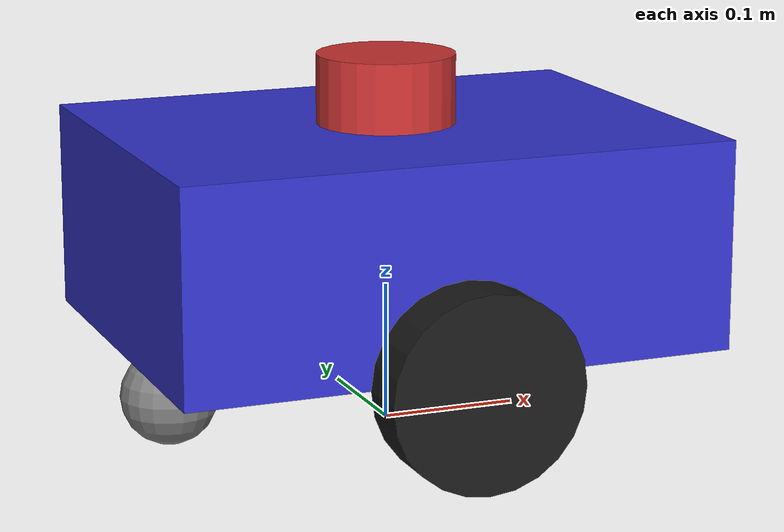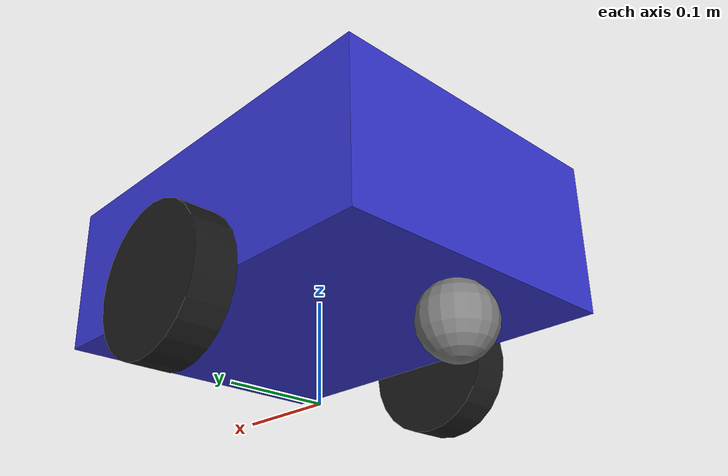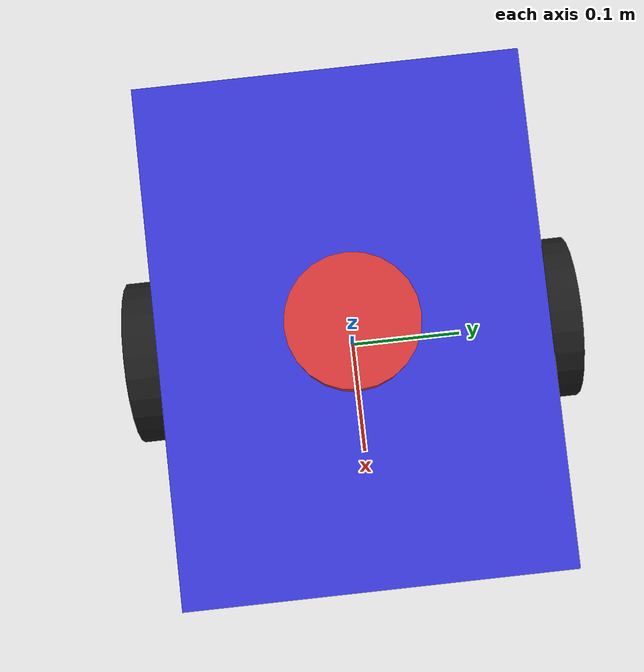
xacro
<?xml version="1.0"?>
<robot xmlns:xacro="http://www.ros.org/wiki/xacro" name="diff_drive_robot">

  <!-- ========================== PROPERTIES ========================== -->
  <xacro:property name="chassis_length" value="0.4"/>
  <xacro:property name="chassis_width"  value="0.3"/>
  <xacro:property name="chassis_height" value="0.15"/>
  <xacro:property name="chassis_mass"   value="5.0"/>

  <xacro:property name="wheel_radius"   value="0.07"/>
  <xacro:property name="wheel_width"    value="0.04"/>
  <xacro:property name="wheel_mass"     value="0.5"/>

  <xacro:property name="caster_radius"  value="0.035"/>
  <xacro:property name="caster_mass"    value="0.2"/>

  <xacro:property name="lidar_size"     value="0.05"/>
  <xacro:property name="lidar_mass"     value="0.1"/>

  <!-- ========================== MATERIALS ========================== -->
  <material name="blue">
    <color rgba="0.2 0.2 0.8 1.0"/>
  </material>
  <material name="black">
    <color rgba="0.1 0.1 0.1 1.0"/>
  </material>
  <material name="red">
    <color rgba="0.8 0.2 0.2 1.0"/>
  </material>
  <material name="grey">
    <color rgba="0.5 0.5 0.5 1.0"/>
  </material>

  <!-- ========================== INERTIA MACROS ========================== -->
  <xacro:macro name="box_inertia" params="m x y z">
    <inertial>
      <mass value="${m}"/>
      <inertia ixx="${m*(y*y+z*z)/12}" ixy="0" ixz="0"
               iyy="${m*(x*x+z*z)/12}" iyz="0"
               izz="${m*(x*x+y*y)/12}"/>
    </inertial>
  </xacro:macro>

  <xacro:macro name="cylinder_inertia" params="m r h">
    <inertial>
      <mass value="${m}"/>
      <inertia ixx="${m*(3*r*r+h*h)/12}" ixy="0" ixz="0"
               iyy="${m*(3*r*r+h*h)/12}" iyz="0"
               izz="${m*r*r/2}"/>
    </inertial>
  </xacro:macro>

  <xacro:macro name="sphere_inertia" params="m r">
    <inertial>
      <mass value="${m}"/>
      <inertia ixx="${2*m*r*r/5}" ixy="0" ixz="0"
               iyy="${2*m*r*r/5}" iyz="0"
               izz="${2*m*r*r/5}"/>
    </inertial>
  </xacro:macro>

  <!-- ========================== BASE FOOTPRINT ========================== -->
  <link name="base_footprint"/>

  <joint name="base_joint" type="fixed">
    <parent link="base_footprint"/>
    <child  link="base_link"/>
    <origin xyz="0 0 ${wheel_radius}" rpy="0 0 0"/>
  </joint>

  <!-- ========================== CHASSIS (base_link) ========================== -->
  <link name="base_link">
    <visual>
      <geometry>
        <box size="${chassis_length} ${chassis_width} ${chassis_height}"/>
      </geometry>
      <origin xyz="0 0 ${chassis_height/2}" rpy="0 0 0"/>
      <material name="blue"/>
    </visual>
    <collision>
      <geometry>
        <box size="${chassis_length} ${chassis_width} ${chassis_height}"/>
      </geometry>
      <origin xyz="0 0 ${chassis_height/2}" rpy="0 0 0"/>
    </collision>
    <xacro:box_inertia m="${chassis_mass}" x="${chassis_length}" y="${chassis_width}" z="${chassis_height}"/>
  </link>

  <gazebo reference="base_link">
    <material>Gazebo/Blue</material>
  </gazebo>

  <!-- ========================== WHEEL MACRO ========================== -->
  <xacro:macro name="drive_wheel" params="prefix y_offset">
    <link name="${prefix}_wheel">
      <visual>
        <geometry>
          <cylinder radius="${wheel_radius}" length="${wheel_width}"/>
        </geometry>
        <material name="black"/>
      </visual>
      <collision>
        <geometry>
          <cylinder radius="${wheel_radius}" length="${wheel_width}"/>
        </geometry>
      </collision>
      <xacro:cylinder_inertia m="${wheel_mass}" r="${wheel_radius}" h="${wheel_width}"/>
    </link>

    <joint name="${prefix}_wheel_joint" type="continuous">
      <parent link="base_link"/>
      <child  link="${prefix}_wheel"/>
      <origin xyz="0 ${y_offset} 0" rpy="${-pi/2} 0 0"/>
      <axis xyz="0 0 1"/>
      <dynamics friction="1.0" damping="0.1"/>
    </joint>

    <gazebo reference="${prefix}_wheel">
      <material>Gazebo/DarkGrey</material>
      <mu1>1.0</mu1>
      <mu2>1.0</mu2>
    </gazebo>
  </xacro:macro>

  <xacro:drive_wheel prefix="left"  y_offset="${chassis_width/2 + wheel_width/2}"/>
  <xacro:drive_wheel prefix="right" y_offset="${-(chassis_width/2 + wheel_width/2)}"/>

  <!-- ========================== CASTER WHEEL ========================== -->
  <link name="caster_wheel">
    <visual>
      <geometry>
        <sphere radius="${caster_radius}"/>
      </geometry>
      <material name="grey"/>
    </visual>
    <collision>
      <geometry>
        <sphere radius="${caster_radius}"/>
      </geometry>
    </collision>
    <xacro:sphere_inertia m="${caster_mass}" r="${caster_radius}"/>
  </link>

  <joint name="caster_joint" type="fixed">
    <parent link="base_link"/>
    <child  link="caster_wheel"/>
    <origin xyz="${-chassis_length/2 + caster_radius} 0 ${-(wheel_radius - caster_radius)}" rpy="0 0 0"/>
  </joint>

  <gazebo reference="caster_wheel">
    <material>Gazebo/Grey</material>
    <mu1>0.0</mu1>
    <mu2>0.0</mu2>
  </gazebo>

  <!-- ========================== LIDAR SENSOR ========================== -->
  <link name="lidar_link">
    <visual>
      <geometry>
        <cylinder radius="${lidar_size}" length="${lidar_size}"/>
      </geometry>
      <material name="red"/>
    </visual>
    <collision>
      <geometry>
        <cylinder radius="${lidar_size}" length="${lidar_size}"/>
      </geometry>
    </collision>
    <xacro:cylinder_inertia m="${lidar_mass}" r="${lidar_size}" h="${lidar_size}"/>
  </link>

  <joint name="lidar_joint" type="fixed">
    <parent link="base_link"/>
    <child  link="lidar_link"/>
    <origin xyz="0 0 ${chassis_height + lidar_size/2}" rpy="0 0 0"/>
  </joint>

  <gazebo reference="lidar_link">
    <material>Gazebo/Red</material>
    <sensor type="ray" name="lidar_sensor">
      <pose>0 0 0 0 0 0</pose>
      <visualize>true</visualize>
      <update_rate>10</update_rate>
      <ray>
        <scan>
          <horizontal>
            <samples>360</samples>
            <resolution>1</resolution>
            <min_angle>-3.14159265</min_angle>
            <max_angle>3.14159265</max_angle>
          </horizontal>
        </scan>
        <range>
          <min>0.12</min>
          <max>12.0</max>
          <resolution>0.01</resolution>
        </range>
        <noise>
          <type>gaussian</type>
          <mean>0.0</mean>
          <stddev>0.01</stddev>
        </noise>
      </ray>
      <plugin name="gazebo_ros_lidar" filename="libgazebo_ros_ray_sensor.so">
        <ros>
          <remapping>~/out:=scan</remapping>
        </ros>
        <output_type>sensor_msgs/LaserScan</output_type>
        <frame_name>lidar_link</frame_name>
      </plugin>
    </sensor>
  </gazebo>

  <!-- ========================== DIFFERENTIAL DRIVE PLUGIN ========================== -->
  <gazebo>
    <plugin name="diff_drive_controller" filename="libgazebo_ros_diff_drive.so">
      <ros>
        <namespace>/</namespace>
      </ros>

      <!-- Wheel joints -->
      <left_joint>left_wheel_joint</left_joint>
      <right_joint>right_wheel_joint</right_joint>

      <!-- Kinematics -->
      <wheel_separation>${chassis_width + wheel_width}</wheel_separation>
      <wheel_diameter>${2 * wheel_radius}</wheel_diameter>

      <!-- Limits -->
      <max_wheel_torque>20</max_wheel_torque>
      <max_wheel_acceleration>1.0</max_wheel_acceleration>

      <!-- Output -->
      <command_topic>cmd_vel</command_topic>
      <odometry_topic>odom</odometry_topic>
      <odometry_frame>odom</odometry_frame>
      <robot_base_frame>base_footprint</robot_base_frame>

      <publish_odom>true</publish_odom>
      <publish_odom_tf>true</publish_odom_tf>
      <publish_wheel_tf>true</publish_wheel_tf>

      <update_rate>30</update_rate>
    </plugin>
  </gazebo>

</robot>
